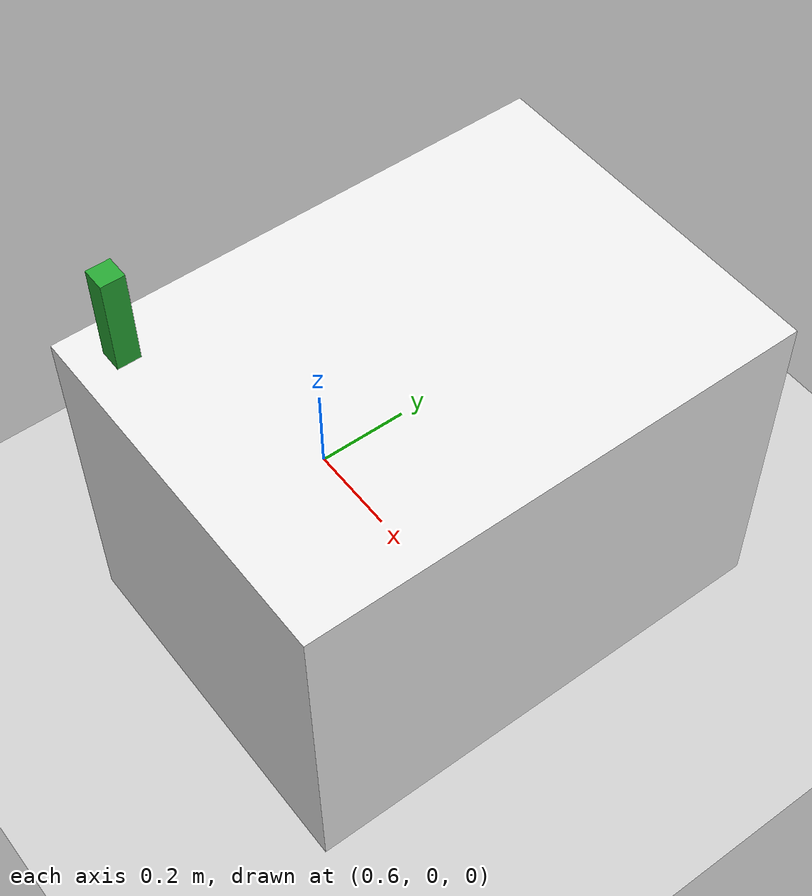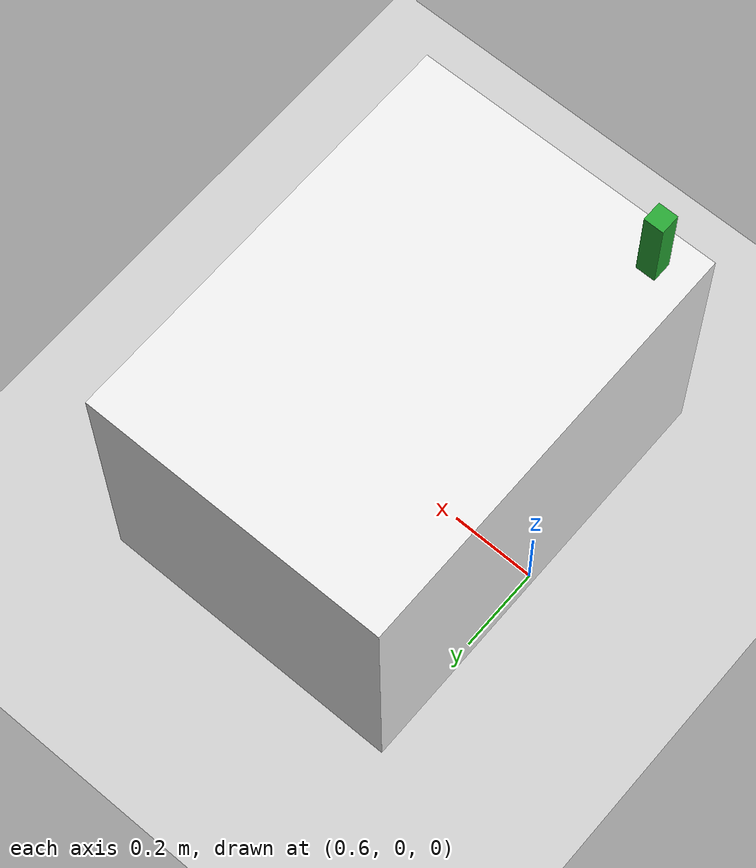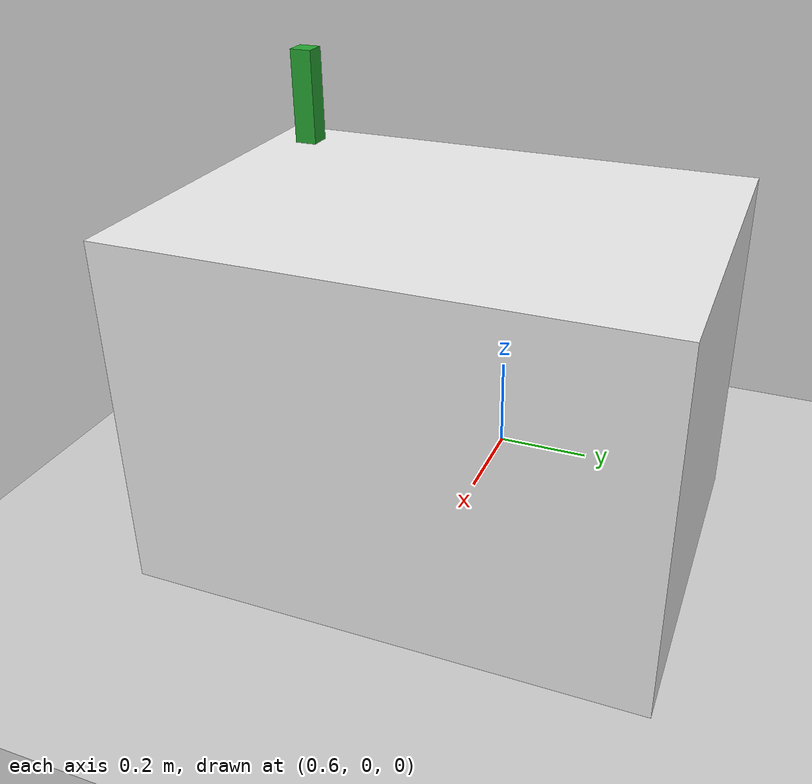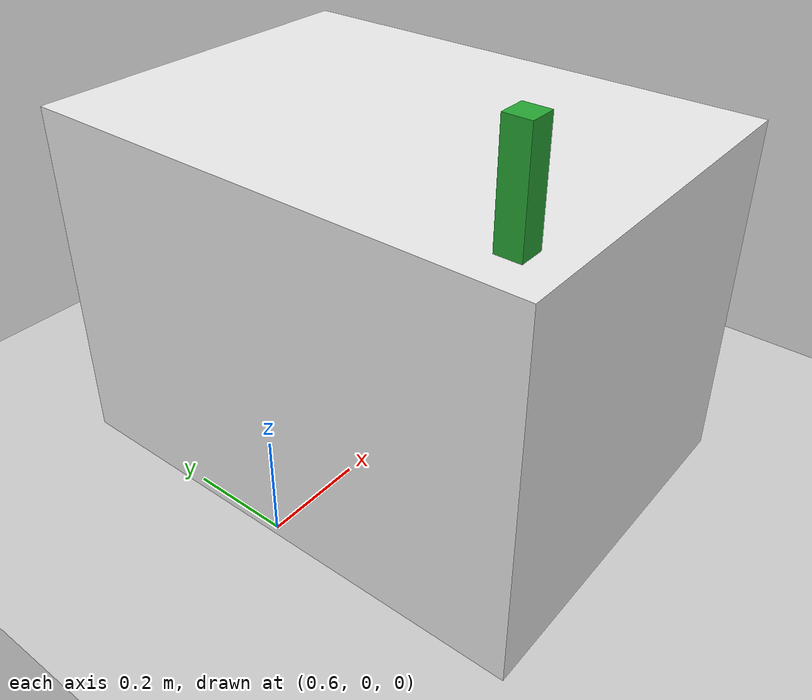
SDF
<sdf version="1.4">
 <world name="default">
  <light name="sun" type="directional">
   <pose>0 0 10 0 -0 0</pose>
   <diffuse>0.8 0.8 0.8 1</diffuse>
   <specular>0.2 0.2 0.2 1</specular>
   <attenuation>
    <range>1000</range>
    <constant>0.9</constant>
    <linear>0.01</linear>
    <quadratic>0.001</quadratic>
   </attenuation>
   <direction>-0.5 0.1 -0.9</direction>
  </light>
  <model name="ground_plane">
   <static>1</static>
   <link name="link">
    <collision name="collision">
     <geometry><plane><normal>0 0 1</normal><size>100 100</size></plane></geometry>
     <surface><friction><ode><mu>100</mu><mu2>50</mu2></ode></friction></surface>
    </collision>
    <visual name="visual">
     <cast_shadows>0</cast_shadows>
     <geometry><plane><normal>0 0 1</normal><size>100 100</size></plane></geometry>
     <material>
      <script><uri>file://media/materials/scripts/gazebo.material</uri><name>Gazebo/Grey</name></script>
     </material>
    </visual>
    <velocity_decay><linear>0</linear><angular>0</angular></velocity_decay>
   </link>
  </model>
  <physics type="ode">
   <max_step_size>0.001</max_step_size>
   <real_time_factor>1</real_time_factor>
   <real_time_update_rate>1000</real_time_update_rate>
   <gravity>0 0 -9.8</gravity>
  </physics>
  <scene><ambient>0.4 0.4 0.4 1</ambient><background>0.7 0.7 0.7 1</background><shadows>1</shadows></scene>
  <spherical_coordinates>
   <surface_model>EARTH_WGS84</surface_model>
   <latitude_deg>0</latitude_deg>
   <longitude_deg>0</longitude_deg>
   <elevation>0</elevation>
   <heading_deg>0</heading_deg>
  </spherical_coordinates>
  <model name="unit_box_1">
   <pose>0.94961 -0.0042 0.35 0 -0 0.001725</pose>
   <link name="link">
    <inertial>
     <mass>1000</mass>
     <inertia><ixx>1000</ixx><ixy>0</ixy><ixz>0</ixz><iyy>1000</iyy><iyz>0</iyz><izz>1000</izz></inertia>
    </inertial>
    <collision name="collision"><geometry><box><size>0.72549 1 0.7</size></box></geometry></collision>
    <visual name="visual">
     <geometry><box><size>0.72549 1 0.7</size></box></geometry>
     <material>
      <script><uri>file://media/materials/scripts/gazebo.material</uri><name>Gazebo/White</name></script>
     </material>
    </visual>
    <velocity_decay><linear>0</linear><angular>0</angular></velocity_decay>
   </link>
   <static>0</static>
  </model>
  <model name="unit_object_Green">
   <pose>0.676365 -0.420548 0.797068 0.000337 6.9e-05 -0.000317</pose>
   <link name="link">
    <inertial>
     <mass>2</mass>
     <inertia>
      <ixx>0.001</ixx>
      <ixy>0.000001</ixy>
      <ixz>0.000001</ixz>
      <iyy>0.001</iyy>
      <iyz>0.000001</iyz>
      <izz>0.001</izz>
     </inertia>
    </inertial>
    <collision name="collision">
     <geometry><box><size>0.045368 0.045368 0.194118</size></box></geometry>
    </collision>
    <visual name="visual">
     <geometry><box><size>0.045368 0.045368 0.194118</size></box></geometry>
     <material>
      <script><uri>file://media/materials/scripts/gazebo.material</uri><name>Gazebo/Green</name></script>
     </material>
    </visual>
    <velocity_decay><linear>0</linear><angular>0</angular></velocity_decay>
   </link>
   <static>0</static>
  </model>
 </world>
</sdf>
